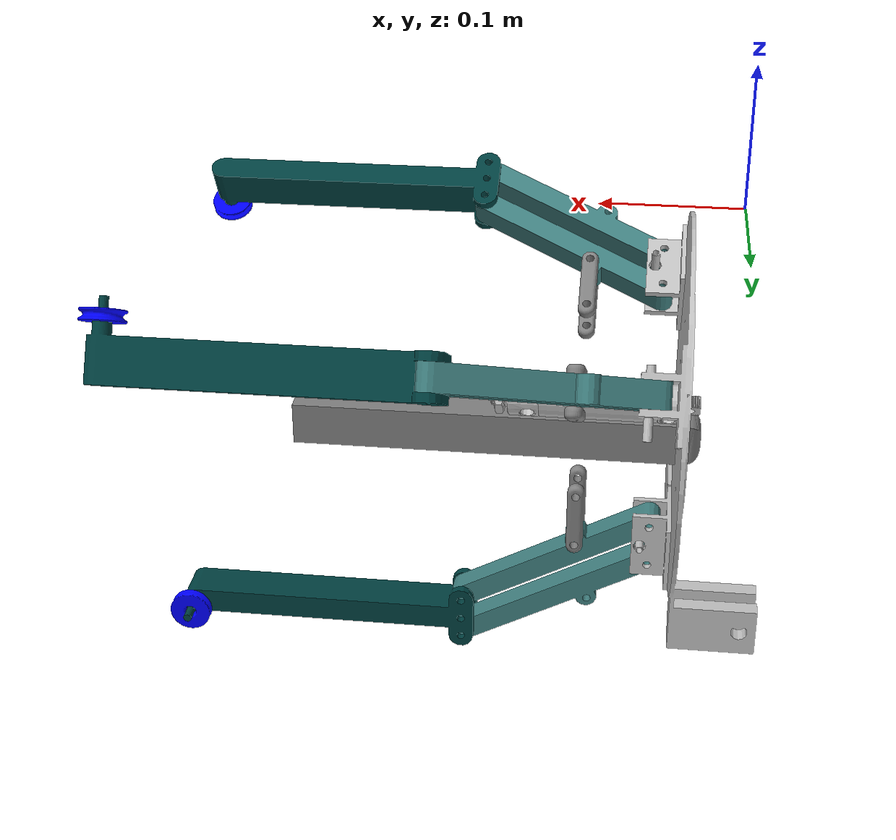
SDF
<?xml version="1.0" encoding="utf-8"?>
<sdf version="1.5">
  <model name="Grabber2">
    <pose>0 0 -0.3556 0 0 0</pose>
    <plugin name="clock" filename="libgz_clock.so">
      <topic>/gazebo/frc/time</topic>
    </plugin>
    <link name="BasePlate">
      <gravity>1</gravity>
      <self_collide>0</self_collide>
      <pose>0.0394096347676358 -0.00669160683587962 0.182263291258748 -1.5707963267949 0 -1.5707963267949</pose>
      <must_be_base_link>1</must_be_base_link>
      <velocity_decay>
        <linear>0</linear>
        <angular>0</angular>
      </velocity_decay>
      <inertial>
        <mass>0.97952268083628</mass>
        <pose>0 0 0 0 0 0</pose>
        <inertia>
          <ixx>0.00242246009405507</ixx>
          <ixy>5.07321204602836E-05</ixy>
          <ixz>3.20439790448188E-05</ixz>
          <iyy>0.00157517875275626</iyy>
          <iyz>0.000323219144293511</iyz>
          <izz>0.00320192778902699</izz>
        </inertia>
      </inertial>
      <collision name="BasePlate_collision">
        <pose>-0.00669160683587963 -0.0209367087412525 -0.00681050686065914 0 0 0</pose>
        <geometry>
          <mesh>
            <scale>1 1 1</scale>
            <uri>model://Grabber2/meshes/BasePlate_col.STL</uri>
          </mesh>
        </geometry>
        <surface>
          <contact>
            <ode />
          </contact>
          <friction>
            <ode>
              <mu>0</mu>
              <mu2>0</mu2>
            </ode>
          </friction>
        </surface>
      </collision>
      <visual name="BasePlate_visual">
        <pose>-0.00669160683587963 -0.0209367087412525 -0.00681050686065914 0 0 0</pose>
        <material>
          <ambient>0.752941176470588 0.752941176470588 0.752941176470588 1</ambient>
          <diffuse>0.752941176470588 0.752941176470588 0.752941176470588 1</diffuse>
        </material>
        <geometry>
          <mesh>
            <scale>1 1 1</scale>
            <uri>model://Grabber2/meshes/BasePlate.STL</uri>
          </mesh>
        </geometry>
      </visual>
    </link>
    <link name="Piston">
      <gravity>1</gravity>
      <self_collide>0</self_collide>
      <pose>0.142017211360412 3.57031174565772E-08 0.202177944136333 -1.5707963267949 0 -1.5707963267949</pose>
      <must_be_base_link>0</must_be_base_link>
      <velocity_decay>
        <linear>0</linear>
        <angular>0</angular>
      </velocity_decay>
      <inertial>
        <mass>0.845777994116828</mass>
        <pose>3.97046694025453E-23 0 0 0 0 0</pose>
        <inertia>
          <ixx>0.010903</ixx>
          <ixy>3.08649201397419E-11</ixy>
          <ixz>1.84330149826993E-09</ixz>
          <iyy>0.0109</iyy>
          <iyz>1.82515331666014E-06</iyz>
          <izz>3.05610714652153E-08</izz>
        </inertia>
      </inertial>
      <collision name="Piston_collision">
        <pose>3.57031174269971E-08 -0.00102205586366754 -0.109418083453435 0 0 0</pose>
        <geometry>
          <mesh>
            <scale>1 1 1</scale>
            <uri>model://Grabber2/meshes/Piston_col.STL</uri>
          </mesh>
        </geometry>
        <surface>
          <contact>
            <ode />
          </contact>
          <friction>
            <ode>
              <mu>0</mu>
              <mu2>0</mu2>
            </ode>
          </friction>
        </surface>
      </collision>
      <visual name="Piston_visual">
        <pose>3.57031174269971E-08 -0.00102205586366754 -0.109418083453435 0 0 0</pose>
        <material>
          <ambient>0.501960784313725 0.501960784313725 0.501960784313725 1</ambient>
          <diffuse>0.501960784313725 0.501960784313725 0.501960784313725 1</diffuse>
        </material>
        <geometry>
          <mesh>
            <scale>1 1 1</scale>
            <uri>model://Grabber2/meshes/Piston.STL</uri>
          </mesh>
        </geometry>
      </visual>
    </link>
    <joint name="BasePlate-Piston" type="prismatic">
      <parent>BasePlate</parent>
      <child>Piston</child>
      <pose>3.57031174269971E-08 -0.00102205586366754 -0.0281129943618401 0 4.71238898038469 0</pose>
      <axis>
        <xyz>1 0 -2.22044604925031E-16</xyz>
        <dynamics>
          <damping>1</damping>
          <friction>1</friction>
        </dynamics>
        <limit>
          <upper>0</upper>
          <lower>-0.2</lower>
          <effort>100</effort>
        </limit>
      </axis>
    </joint>
    <link name="PistonTop">
      <gravity>1</gravity>
      <self_collide>0</self_collide>
      <pose>0.107211628890243 -3.47405220951939E-15 0.109409337950045 -1.5707963267949 0 -1.5707963267949</pose>
      <must_be_base_link>0</must_be_base_link>
      <velocity_decay>
        <linear>0</linear>
        <angular>0</angular>
      </velocity_decay>
      <inertial>
        <mass>0.0393863816718466</mass>
        <pose>0 0 0 0 0 0</pose>
        <inertia>
          <ixx>0</ixx>
          <ixy>0</ixy>
          <ixz>0</ixz>
          <iyy>0</iyy>
          <iyz>0</iyz>
          <izz>0</izz>
        </inertia>
      </inertial>
      <collision name="PistonTop_collision">
        <pose>-3.49590388408064E-15 -0.0937906620499553 -0.0746125009832666 0 0 0</pose>
        <geometry>
          <mesh>
            <scale>1 1 1</scale>
            <uri>model://Grabber2/meshes/PistonTop_col.STL</uri>
          </mesh>
        </geometry>
        <surface>
          <contact>
            <ode />
          </contact>
          <friction>
            <ode>
              <mu>0</mu>
              <mu2>0</mu2>
            </ode>
          </friction>
        </surface>
      </collision>
      <visual name="PistonTop_visual">
        <pose>-3.49590388408064E-15 -0.0937906620499553 -0.0746125009832666 0 0 0</pose>
        <material>
          <ambient>0.501960784313725 0.501960784313725 0.501960784313725 1</ambient>
          <diffuse>0.501960784313725 0.501960784313725 0.501960784313725 1</diffuse>
        </material>
        <geometry>
          <mesh>
            <scale>1 1 1</scale>
            <uri>model://Grabber2/meshes/PistonTop.STL</uri>
          </mesh>
        </geometry>
      </visual>
    </link>
    <joint name="Piston-PistonTop" type="revolute">
      <parent>Piston</parent>
      <child>PistonTop</child>
      <pose>-1.81322211238313E-15 -0.0210831620499555 -0.0260017420727861 0 0 0</pose>
      <axis>
        <xyz>-1 0 0</xyz>
        <dynamics>
          <damping>1</damping>
          <friction>1</friction>
        </dynamics>
        <limit>
          <upper>0</upper>
          <lower>0</lower>
          <effort>10</effort>
        </limit>
      </axis>
    </joint>
    <joint name="TopArmIn-PistonTop" type="revolute">
      <parent>TopArmIn</parent>
      <child>PistonTop</child>
      <pose>-4.36079987370316E-19 0.0210831620499101 9.81742326322532E-10 0 0 0</pose>
      <axis>
        <xyz>-1 0 0</xyz>
        <dynamics>
          <damping>0</damping>
          <friction>0</friction>
        </dynamics>
        <limit>
          <upper>0</upper>
          <lower>0</lower>
          <effort>1</effort>
        </limit>
      </axis>
    </joint>
    <link name="PistonLeft">
      <gravity>1</gravity>
      <self_collide>0</self_collide>
      <pose>0.10721162889025 -0.0812250959730157 0.250095331024979 -1.5707963267949 0 -1.5707963267949</pose>
      <must_be_base_link>0</must_be_base_link>
      <velocity_decay>
        <linear>0</linear>
        <angular>0</angular>
      </velocity_decay>
      <inertial>
        <mass>0.0393863816718466</mass>
        <pose>0 0 0 0 0 0</pose>
        <inertia>
          <ixx>0</ixx>
          <ixy>0</ixy>
          <ixz>0</ixz>
          <iyy>0</iyy>
          <iyz>0</iyz>
          <izz>0</izz>
        </inertia>
      </inertial>
      <collision name="PistonLeft_collision">
        <pose>-0.0812250959730157 0.046895331024979 -0.0746125009832731 0 0 0</pose>
        <geometry>
          <mesh>
            <scale>1 1 1</scale>
            <uri>model://Grabber2/meshes/PistonLeft_col.STL</uri>
          </mesh>
        </geometry>
        <surface>
          <contact>
            <ode />
          </contact>
          <friction>
            <ode>
              <mu>0</mu>
              <mu2>0</mu2>
            </ode>
          </friction>
        </surface>
      </collision>
      <visual name="PistonLeft_visual">
        <pose>-0.0812250959730157 0.046895331024979 -0.0746125009832731 0 0 0</pose>
        <material>
          <ambient>0.501960784313725 0.501960784313725 0.501960784313725 1</ambient>
          <diffuse>0.501960784313725 0.501960784313725 0.501960784313725 1</diffuse>
        </material>
        <geometry>
          <mesh>
            <scale>1 1 1</scale>
            <uri>model://Grabber2/meshes/PistonLeft.STL</uri>
          </mesh>
        </geometry>
      </visual>
    </link>
    <joint name="Piston-PistonLeft" type="revolute">
      <parent>Piston</parent>
      <child>PistonLeft</child>
      <pose>-0.0182585539004344 0.0105415810094289 -0.026001742043933 0 0 0</pose>
      <axis>
        <xyz>-0.500000000000005 -0.866025403784436 5.67847744670729E-16</xyz>
        <dynamics>
          <damping>1</damping>
          <friction>1</friction>
        </dynamics>
        <limit>
          <upper>0</upper>
          <lower>0</lower>
          <effort>10</effort>
        </limit>
      </axis>
    </joint>
    <joint name="LeftArmIn-PistonLeft" type="revolute">
      <parent>LeftArmIn</parent>
      <child>PistonLeft</child>
      <pose>-0.0182585539273601 0.0105415810249748 -9.8327307407331E-10 0 0 0</pose>
      <axis>
        <xyz>-0.500000000000005 -0.866025403784436 5.67847744670729E-16</xyz>
        <dynamics>
          <damping>0</damping>
          <friction>0</friction>
        </dynamics>
        <limit>
          <upper>0</upper>
          <lower>0</lower>
          <effort>1</effort>
        </limit>
      </axis>
    </joint>
    <link name="PistonRight">
      <gravity>1</gravity>
      <self_collide>0</self_collide>
      <pose>0.107211628890242 0.0812250959730234 0.250095331024977 -1.5707963267949 0 -1.5707963267949</pose>
      <must_be_base_link>0</must_be_base_link>
      <velocity_decay>
        <linear>0</linear>
        <angular>0</angular>
      </velocity_decay>
      <inertial>
        <mass>0.0393863816718465</mass>
        <pose>0 0 0 0 0 0</pose>
        <inertia>
          <ixx>0</ixx>
          <ixy>0</ixy>
          <ixz>0</ixz>
          <iyy>0</iyy>
          <iyz>0</iyz>
          <izz>0</izz>
        </inertia>
      </inertial>
      <collision name="PistonRight_collision">
        <pose>0.0812250959730234 0.0468953310249774 -0.0746125009832657 0 0 0</pose>
        <geometry>
          <mesh>
            <scale>1 1 1</scale>
            <uri>model://Grabber2/meshes/PistonRight_col.STL</uri>
          </mesh>
        </geometry>
        <surface>
          <contact>
            <ode />
          </contact>
          <friction>
            <ode>
              <mu>0</mu>
              <mu2>0</mu2>
            </ode>
          </friction>
        </surface>
      </collision>
      <visual name="PistonRight_visual">
        <pose>0.0812250959730234 0.0468953310249774 -0.0746125009832657 0 0 0</pose>
        <material>
          <ambient>0.501960784313725 0.501960784313725 0.501960784313725 1</ambient>
          <diffuse>0.501960784313725 0.501960784313725 0.501960784313725 1</diffuse>
        </material>
        <geometry>
          <mesh>
            <scale>1 1 1</scale>
            <uri>model://Grabber2/meshes/PistonRight.STL</uri>
          </mesh>
        </geometry>
      </visual>
    </link>
    <joint name="Piston-PistonRight" type="revolute">
      <parent>Piston</parent>
      <child>PistonRight</child>
      <pose>0.0182585539273665 0.0105415810249781 -9.83265718845772E-10 0 0 1.5707963267949</pose>
      <axis>
        <xyz>0.866025403784444 0.499999999999991 0</xyz>
        <dynamics>
          <damping>1</damping>
          <friction>1</friction>
        </dynamics>
        <limit>
          <upper>0</upper>
          <lower>0</lower>
          <effort>10</effort>
        </limit>
      </axis>
    </joint>
    <joint name="RightArmIn-PistonRight" type="revolute">
      <parent>RightArmIn</parent>
      <child>PistonRight</child>
      <pose>-0.0182585539245719 -0.0105415810233646 9.82011916228487E-10 0 0 0</pose>
      <axis>
        <xyz>0.499999999999992 -0.866025403784443 -1.45698559662089E-15</xyz>
        <dynamics>
          <damping>0</damping>
          <friction>0</friction>
        </dynamics>
        <limit>
          <upper>0</upper>
          <lower>0</lower>
          <effort>1</effort>
        </limit>
      </axis>
    </joint>
    <link name="TopArmOut">
      <gravity>1</gravity>
      <self_collide>0</self_collide>
      <pose>0.121621223933921 -1.34627185846477E-15 0.0339942303824916 -1.5707963267949 0 -1.5707963267949</pose>
      <must_be_base_link>0</must_be_base_link>
      <velocity_decay>
        <linear>0</linear>
        <angular>0</angular>
      </velocity_decay>
      <inertial>
        <mass>0.150129793907084</mass>
        <pose>0 0 0 0 0 0</pose>
        <inertia>
          <ixx>0</ixx>
          <ixy>0</ixy>
          <ixz>0</ixz>
          <iyy>0</iyy>
          <iyz>0</iyz>
          <izz>0</izz>
        </inertia>
      </inertial>
      <collision name="TopArmOut_collision">
        <pose>-1.37132310586462E-15 -0.169205769617508 -0.089022096026944 0 0 0</pose>
        <geometry>
          <mesh>
            <scale>1 1 1</scale>
            <uri>model://Grabber2/meshes/TopArmOut_col.STL</uri>
          </mesh>
        </geometry>
        <surface>
          <contact>
            <ode />
          </contact>
          <friction>
            <ode>
              <mu>0</mu>
              <mu2>0</mu2>
            </ode>
          </friction>
        </surface>
      </collision>
      <visual name="TopArmOut_visual">
        <pose>-1.37132310586462E-15 -0.169205769617508 -0.089022096026944 0 0 0</pose>
        <material>
          <ambient>0.250980392156863 0.501960784313725 0.501960784313725 1</ambient>
          <diffuse>0.250980392156863 0.501960784313725 0.501960784313725 1</diffuse>
        </material>
        <geometry>
          <mesh>
            <scale>1 1 1</scale>
            <uri>model://Grabber2/meshes/TopArmOut.STL</uri>
          </mesh>
        </geometry>
      </visual>
    </link>
    <joint name="BasePlate-TopArmOut" type="revolute">
      <parent>BasePlate</parent>
      <child>TopArmOut</child>
      <pose>2.65150063492559E-15 -0.0549057696175084 -0.063622096026944 0 0 0</pose>
      <axis>
        <xyz>-1 0 0</xyz>
        <dynamics>
          <damping>1</damping>
          <friction>1</friction>
        </dynamics>
        <limit>
          <upper>0</upper>
          <lower>0</lower>
          <effort>20</effort>
        </limit>
      </axis>
    </joint>
    <link name="RightArmOut">
      <gravity>1</gravity>
      <self_collide>0</self_collide>
      <pose>0.121621223934715 0.146536494948683 0.287802884812847 -1.5707963267949 0 -1.5707963267949</pose>
      <must_be_base_link>0</must_be_base_link>
      <velocity_decay>
        <linear>0</linear>
        <angular>0</angular>
      </velocity_decay>
      <inertial>
        <mass>0.150129793907084</mass>
        <pose>0 0 0 0 0 0</pose>
        <inertia>
          <ixx>0</ixx>
          <ixy>0</ixy>
          <ixz>0</ixz>
          <iyy>0</iyy>
          <iyz>0</iyz>
          <izz>0</izz>
        </inertia>
      </inertial>
      <collision name="RightArmOut_collision">
        <pose>0.146536494948683 0.0846028848128467 -0.0890220960277382 0 0 0</pose>
        <geometry>
          <mesh>
            <scale>1 1 1</scale>
            <uri>model://Grabber2/meshes/RightArmOut_col.STL</uri>
          </mesh>
        </geometry>
        <surface>
          <contact>
            <ode />
          </contact>
          <friction>
            <ode>
              <mu>0</mu>
              <mu2>0</mu2>
            </ode>
          </friction>
        </surface>
      </collision>
      <visual name="RightArmOut_visual">
        <pose>0.146536494948683 0.0846028848128467 -0.0890220960277382 0 0 0</pose>
        <material>
          <ambient>0.250980392156863 0.501960784313725 0.501960784313725 1</ambient>
          <diffuse>0.250980392156863 0.501960784313725 0.501960784313725 1</diffuse>
        </material>
        <geometry>
          <mesh>
            <scale>1 1 1</scale>
            <uri>model://Grabber2/meshes/RightArmOut.STL</uri>
          </mesh>
        </geometry>
      </visual>
    </link>
    <joint name="BasePlate-RightArmOut" type="revolute">
      <parent>BasePlate</parent>
      <child>RightArmOut</child>
      <pose>0.0475497913126599 0.0274528847842007 -0.0636220960277382 0 0 0</pose>
      <axis>
        <xyz>0.500000000000006 -0.866025403784435 0</xyz>
        <dynamics>
          <damping>1</damping>
          <friction>1</friction>
        </dynamics>
        <limit>
          <upper>0</upper>
          <lower>0</lower>
          <effort>20</effort>
        </limit>
      </axis>
    </joint>
    <link name="LeftArmOut">
      <gravity>1</gravity>
      <self_collide>0</self_collide>
      <pose>0.121621223934282 -0.146536494947105 0.287802884813463 -1.5707963267949 0 -1.5707963267949</pose>
      <must_be_base_link>0</must_be_base_link>
      <velocity_decay>
        <linear>0</linear>
        <angular>0</angular>
      </velocity_decay>
      <inertial>
        <mass>0.150129793907084</mass>
        <pose>0 0 0 0 0 0</pose>
        <inertia>
          <ixx>0</ixx>
          <ixy>0</ixy>
          <ixz>0</ixz>
          <iyy>0</iyy>
          <iyz>0</iyz>
          <izz>0</izz>
        </inertia>
      </inertial>
      <collision name="LeftArmOut_collision">
        <pose>-0.146536494947105 0.0846028848134631 -0.0890220960273056 0 0 0</pose>
        <geometry>
          <mesh>
            <scale>1 1 1</scale>
            <uri>model://Grabber2/meshes/LeftArmOut_col.STL</uri>
          </mesh>
        </geometry>
        <surface>
          <contact>
            <ode />
          </contact>
          <friction>
            <ode>
              <mu>0</mu>
              <mu2>0</mu2>
            </ode>
          </friction>
        </surface>
      </collision>
      <visual name="LeftArmOut_visual">
        <pose>-0.146536494947105 0.0846028848134631 -0.0890220960273056 0 0 0</pose>
        <material>
          <ambient>0.250980392156863 0.501960784313725 0.501960784313725 1</ambient>
          <diffuse>0.250980392156863 0.501960784313725 0.501960784313725 1</diffuse>
        </material>
        <geometry>
          <mesh>
            <scale>1 1 1</scale>
            <uri>model://Grabber2/meshes/LeftArmOut.STL</uri>
          </mesh>
        </geometry>
      </visual>
    </link>
    <joint name="BasePlate-LeftArmOut" type="revolute">
      <parent>BasePlate</parent>
      <child>LeftArmOut</child>
      <pose>-0.0475497912970014 0.0274528848092056 -0.0636220960273056 0 0 0</pose>
      <axis>
        <xyz>0.500000000000005 0.866025403784436 0</xyz>
        <dynamics>
          <damping>1</damping>
          <friction>1</friction>
        </dynamics>
        <limit>
          <upper>0</upper>
          <lower>0</lower>
          <effort>20</effort>
        </limit>
      </axis>
    </joint>
    <link name="TopGrabber">
      <gravity>1</gravity>
      <self_collide>0</self_collide>
      <pose>0.30341463352278 0.000550207789379827 0.012109690419262 -1.5707963267949 0 -1.5707963267949</pose>
      <must_be_base_link>0</must_be_base_link>
      <velocity_decay>
        <linear>0</linear>
        <angular>0</angular>
      </velocity_decay>
      <inertial>
        <mass>0.385881200549357</mass>
        <pose>2.16840434497101E-19 -1.11022302462516E-16 -2.77555756156289E-16 0 0 0</pose>
        <inertia>
          <ixx>0.017891</ixx>
          <ixy>0</ixy>
          <ixz>2.183E-05</ixz>
          <iyy>0.018162</iyy>
          <iyz>0</iyz>
          <izz>2.70782290447359E-06</izz>
        </inertia>
      </inertial>
      <collision name="TopGrabber_collision">
        <pose>0.000550207789379761 -0.191090309580738 -0.270815505615803 0 0 0</pose>
        <geometry>
          <mesh>
            <scale>1 1 1</scale>
            <uri>model://Grabber2/meshes/TopGrabber_col.STL</uri>
          </mesh>
        </geometry>
        <surface>
          <contact>
            <ode />
          </contact>
          <friction>
            <ode>
              <mu>0</mu>
              <mu2>0</mu2>
            </ode>
          </friction>
        </surface>
      </collision>
      <visual name="TopGrabber_visual">
        <pose>0.000550207789379761 -0.191090309580738 -0.270815505615803 0 0 0</pose>
        <material>
          <ambient>0 0.250980392156863 0.250980392156863 1</ambient>
          <diffuse>0 0.250980392156863 0.250980392156863 1</diffuse>
        </material>
        <geometry>
          <mesh>
            <scale>1 1 1</scale>
            <uri>model://Grabber2/meshes/TopGrabber.STL</uri>
          </mesh>
        </geometry>
      </visual>
    </link>
    <joint name="TopArmOut-TopGrabber" type="revolute">
      <parent>TopArmOut</parent>
      <child>TopGrabber</child>
      <pose>5.33427468862868E-17 -0.0282926325268754 -0.0979395019643227 0 0 0</pose>
      <axis>
        <xyz>-1 0 0</xyz>
        <dynamics>
          <damping>1</damping>
          <friction>1</friction>
        </dynamics>
        <limit>
          <upper>0</upper>
          <lower>0</lower>
          <effort>10</effort>
        </limit>
      </axis>
    </joint>
    <joint name="TopArmIn-TopGrabber" type="revolute">
      <parent>TopArmIn</parent>
      <child>TopGrabber</child>
      <pose>-4.33680868994202E-19 -0.0165100000004933 -0.109928583574504 0 0 0</pose>
      <axis>
        <xyz>1 0 0</xyz>
        <dynamics>
          <damping>0</damping>
          <friction>0</friction>
        </dynamics>
        <limit>
          <upper>0</upper>
          <lower>0</lower>
          <effort>1</effort>
        </limit>
      </axis>
    </joint>
    <link name="RightGrabber">
      <gravity>1</gravity>
      <self_collide>0</self_collide>
      <pose>0.303414635474732 0.165213955768811 0.299221652314552 -1.5707963267949 0 -1.5707963267949</pose>
      <must_be_base_link>0</must_be_base_link>
      <velocity_decay>
        <linear>0</linear>
        <angular>0</angular>
      </velocity_decay>
      <inertial>
        <mass>0.385881200549356</mass>
        <pose>3.05311331771918E-16 -4.16333634234434E-17 2.77555756156289E-16 0 0 0</pose>
        <inertia>
          <ixx>0.018095</ixx>
          <ixy>1.17E-06</ixy>
          <ixz>1.091E-05</ixz>
          <iyy>0.017959</iyy>
          <iyz>1.89E-05</iyz>
          <izz>2.71E-06</izz>
        </inertia>
      </inertial>
      <collision name="RightGrabber_collision">
        <pose>0.165213955768811 0.0960216523145518 -0.270815507567756 0 0 0</pose>
        <geometry>
          <mesh>
            <scale>1 1 1</scale>
            <uri>model://Grabber2/meshes/RightGrabber_col.STL</uri>
          </mesh>
        </geometry>
        <surface>
          <contact>
            <ode />
          </contact>
          <friction>
            <ode>
              <mu>0</mu>
              <mu2>0</mu2>
            </ode>
          </friction>
        </surface>
      </collision>
      <visual name="RightGrabber_visual">
        <pose>0.165213955768811 0.0960216523145518 -0.270815507567756 0 0 0</pose>
        <material>
          <ambient>0 0.250980392156863 0.250980392156863 1</ambient>
          <diffuse>0 0.250980392156863 0.250980392156863 1</diffuse>
        </material>
        <geometry>
          <mesh>
            <scale>1 1 1</scale>
            <uri>model://Grabber2/meshes/RightGrabber.STL</uri>
          </mesh>
        </geometry>
      </visual>
    </link>
    <joint name="RightArmOut-RightGrabber" type="revolute">
      <parent>RightArmOut</parent>
      <child>RightGrabber</child>
      <pose>-0.0142980799909579 -0.00825500033167442 -0.109928585526126 0 0 4.71238898038469</pose>
      <axis>
        <xyz>0.866025403784443 0.499999999999992 0</xyz>
        <dynamics>
          <damping>1</damping>
          <friction>1</friction>
        </dynamics>
        <limit>
          <upper>0</upper>
          <lower>0</lower>
          <effort>10</effort>
        </limit>
      </axis>
    </joint>
    <joint name="RightArmIn-RightGrabber" type="revolute">
      <parent>RightArmIn</parent>
      <child>RightGrabber</child>
      <pose>0.0142980788411829 0.00825499966785105 -0.109928585526199 0 0 0</pose>
      <axis>
        <xyz>-0.499999999999992 0.866025403784443 0</xyz>
        <dynamics>
          <damping>0</damping>
          <friction>0</friction>
        </dynamics>
        <limit>
          <upper>0</upper>
          <lower>0</lower>
          <effort>1</effort>
        </limit>
      </axis>
    </joint>
    <link name="LeftGrabber">
      <gravity>1</gravity>
      <self_collide>0</self_collide>
      <pose>0.303414633549958 -0.165764166655437 0.298268660755848 -1.5707963267949 0 -1.5707963267949</pose>
      <must_be_base_link>0</must_be_base_link>
      <velocity_decay>
        <linear>0</linear>
        <angular>0</angular>
      </velocity_decay>
      <inertial>
        <mass>0.385881200549356</mass>
        <pose>2.77555756156289E-16 -1.38777878078145E-17 -4.44089209850063E-16 0 0 0</pose>
        <inertia>
          <ixx>0.018095</ixx>
          <ixy>1.17E-06</ixy>
          <ixz>1.091E-05</ixz>
          <iyy>0.017959</iyy>
          <iyz>1.89E-05</iyz>
          <izz>2.71E-06</izz>
        </inertia>
      </inertial>
      <collision name="LeftGrabber_collision">
        <pose>-0.165764166655437 0.0950686607558478 -0.270815505642981 0 0 0</pose>
        <geometry>
          <mesh>
            <scale>1 1 1</scale>
            <uri>model://Grabber2/meshes/LeftGrabber_col.STL</uri>
          </mesh>
        </geometry>
        <surface>
          <contact>
            <ode />
          </contact>
          <friction>
            <ode>
              <mu>0</mu>
              <mu2>0</mu2>
            </ode>
          </friction>
        </surface>
      </collision>
      <visual name="LeftGrabber_visual">
        <pose>-0.165764166655437 0.0950686607558478 -0.270815505642981 0 0 0</pose>
        <material>
          <ambient>0 0.250980392156863 0.250980392156863 1</ambient>
          <diffuse>0 0.250980392156863 0.250980392156863 1</diffuse>
        </material>
        <geometry>
          <mesh>
            <scale>1 1 1</scale>
            <uri>model://Grabber2/meshes/LeftGrabber.STL</uri>
          </mesh>
        </geometry>
      </visual>
    </link>
    <joint name="LeftArmOut-LeftGrabber" type="revolute">
      <parent>LeftArmOut</parent>
      <child>LeftGrabber</child>
      <pose>-0.0245021378743783 0.014146317117915 -0.0979395024492961 0 0 0</pose>
      <axis>
        <xyz>0.500000000000003 0.866025403784437 1.05313796828123E-15</xyz>
        <dynamics>
          <damping>1</damping>
          <friction>1</friction>
        </dynamics>
        <limit>
          <upper>0</upper>
          <lower>0</lower>
          <effort>10</effort>
        </limit>
      </axis>
    </joint>
    <joint name="LeftArmIn-LeftGrabber" type="revolute">
      <parent>LeftArmIn</parent>
      <child>LeftGrabber</child>
      <pose>-0.0142980795568851 0.00825500008106252 -0.109928583601641 0 0 0</pose>
      <axis>
        <xyz>-0.500000000000004 -0.866025403784436 0</xyz>
        <dynamics>
          <damping>0</damping>
          <friction>0</friction>
        </dynamics>
        <limit>
          <upper>0</upper>
          <lower>0</lower>
          <effort>1</effort>
        </limit>
      </axis>
    </joint>
    <link name="TopWheel">
      <gravity>1</gravity>
      <self_collide>0</self_collide>
      <pose>0.40621104995321 0.0286687406039986 0.0121096904154314 -1.5707963267949 0 -1.5707963267949</pose>
      <must_be_base_link>0</must_be_base_link>
      <velocity_decay>
        <linear>0</linear>
        <angular>0</angular>
      </velocity_decay>
      <inertial>
        <mass>0.00457804253609279</mass>
        <pose>0 0 0 0 0 0</pose>
        <inertia>
          <ixx>0</ixx>
          <ixy>0</ixy>
          <ixz>0</ixz>
          <iyy>0</iyy>
          <iyz>0</iyz>
          <izz>0</izz>
        </inertia>
      </inertial>
      <collision name="TopWheel_collision">
        <pose>0.0286687406039985 -0.191090309584569 -0.373611922046233 0 0 0</pose>
        <geometry>
          <mesh>
            <scale>1 1 1</scale>
            <uri>model://Grabber2/meshes/TopWheel_col.STL</uri>
          </mesh>
        </geometry>
        <surface>
          <contact>
            <ode />
          </contact>
          <friction>
            <ode>
              <mu>0</mu>
              <mu2>0</mu2>
            </ode>
          </friction>
        </surface>
      </collision>
      <visual name="TopWheel_visual">
        <pose>0.0286687406039985 -0.191090309584569 -0.373611922046233 0 0 0</pose>
        <material>
          <ambient>0 0 1 1</ambient>
          <diffuse>0 0 1 1</diffuse>
        </material>
        <geometry>
          <mesh>
            <scale>1 1 1</scale>
            <uri>model://Grabber2/meshes/TopWheel.STL</uri>
          </mesh>
        </geometry>
      </visual>
    </link>
    <joint name="TopGrabber-TopWheel" type="revolute">
      <parent>TopGrabber</parent>
      <child>TopWheel</child>
      <pose>1.38777878078145E-17 -0.0282926325310154 0.0119890816045823 0 0 0</pose>
      <axis>
        <xyz>1 0 0</xyz>
        <dynamics>
          <damping>0</damping>
          <friction>0</friction>
        </dynamics>
        <limit>
          <effort>1</effort>
        </limit>
      </axis>
    </joint>
    <link name="RightWheel">
      <gravity>1</gravity>
      <self_collide>0</self_collide>
      <pose>0.40621105630917 0.151154688778214 0.323573020789361 -1.5707963267949 0 -1.5707963267949</pose>
      <must_be_base_link>0</must_be_base_link>
      <velocity_decay>
        <linear>0</linear>
        <angular>0</angular>
      </velocity_decay>
      <inertial>
        <mass>0.0045780425360928</mass>
        <pose>0 0 0 0 0 0</pose>
        <inertia>
          <ixx>0</ixx>
          <ixy>0</ixy>
          <ixz>0</ixz>
          <iyy>0</iyy>
          <iyz>0</iyz>
          <izz>0</izz>
        </inertia>
      </inertial>
      <collision name="RightWheel_collision">
        <pose>0.151154688778214 0.120373020789361 -0.373611928402193 0 0 0</pose>
        <geometry>
          <mesh>
            <scale>1 1 1</scale>
            <uri>model://Grabber2/meshes/RightWheel_col.STL</uri>
          </mesh>
        </geometry>
        <surface>
          <contact>
            <ode />
          </contact>
          <friction>
            <ode>
              <mu>0</mu>
              <mu2>0</mu2>
            </ode>
          </friction>
        </surface>
      </collision>
      <visual name="RightWheel_visual">
        <pose>0.151154688778214 0.120373020789361 -0.373611928402193 0 0 0</pose>
        <material>
          <ambient>0 0 1 1</ambient>
          <diffuse>0 0 1 1</diffuse>
        </material>
        <geometry>
          <mesh>
            <scale>1 1 1</scale>
            <uri>model://Grabber2/meshes/RightWheel.STL</uri>
          </mesh>
        </geometry>
      </visual>
    </link>
    <joint name="RightGrabber-RightWheel" type="revolute">
      <parent>RightGrabber</parent>
      <child>RightWheel</child>
      <pose>5.17983156367308E-10 2.99057736907749E-10 -4.13219514161511E-10 0 1.78723566518379E-13 1.5707963267951</pose>
      <axis>
        <xyz>0.866025403784881 0.499999999999234 -2.39444176584258E-14</xyz>
        <dynamics>
          <damping>0</damping>
          <friction>0</friction>
        </dynamics>
        <limit>
          <effort>1</effort>
        </limit>
      </axis>
    </joint>
    <link name="LeftWheel">
      <gravity>1</gravity>
      <self_collide>0</self_collide>
      <pose>0.406211049792121 -0.179823433157647 0.273917296777634 -1.5707963267949 0 -1.5707963267949</pose>
      <must_be_base_link>0</must_be_base_link>
      <velocity_decay>
        <linear>0</linear>
        <angular>0</angular>
      </velocity_decay>
      <inertial>
        <mass>0.00457804253609279</mass>
        <pose>0 0 0 0 0 0</pose>
        <inertia>
          <ixx>0</ixx>
          <ixy>0</ixy>
          <ixz>0</ixz>
          <iyy>0</iyy>
          <iyz>0</iyz>
          <izz>0</izz>
        </inertia>
      </inertial>
      <collision name="LeftWheel_collision">
        <pose>-0.179823433157647 0.0707172967776338 -0.373611921885144 0 0 0</pose>
        <geometry>
          <mesh>
            <scale>1 1 1</scale>
            <uri>model://Grabber2/meshes/LeftWheel_col.STL</uri>
          </mesh>
        </geometry>
        <surface>
          <contact>
            <ode />
          </contact>
          <friction>
            <ode>
              <mu>0</mu>
              <mu2>0</mu2>
            </ode>
          </friction>
        </surface>
      </collision>
      <visual name="LeftWheel_visual">
        <pose>-0.179823433157647 0.0707172967776338 -0.373611921885144 0 0 0</pose>
        <material>
          <ambient>0 0 1 1</ambient>
          <diffuse>0 0 1 1</diffuse>
        </material>
        <geometry>
          <mesh>
            <scale>1 1 1</scale>
            <uri>model://Grabber2/meshes/LeftWheel.STL</uri>
          </mesh>
        </geometry>
      </visual>
    </link>
    <joint name="LeftGrabber-LeftWheel" type="revolute">
      <parent>LeftGrabber</parent>
      <child>LeftWheel</child>
      <pose>-0.0245021382845133 0.0141463169867673 0.0119890810168022 0 0 0</pose>
      <axis>
        <xyz>-0.500000000000005 -0.866025403784436 -8.86062342427415E-15</xyz>
        <dynamics>
          <damping>0</damping>
          <friction>0</friction>
        </dynamics>
        <limit>
          <effort>1</effort>
        </limit>
      </axis>
    </joint>
    <link name="TopArmIn">
      <gravity>1</gravity>
      <self_collide>0</self_collide>
      <pose>0.122050767731529 -3.48368510905875E-15 0.0678076269763273 -1.5707963267949 0 -1.5707963267949</pose>
      <must_be_base_link>0</must_be_base_link>
      <velocity_decay>
        <linear>0</linear>
        <angular>0</angular>
      </velocity_decay>
      <inertial>
        <mass>0.150129793907084</mass>
        <pose>0 0 0 0 0 0</pose>
        <inertia>
          <ixx>0</ixx>
          <ixy>0</ixy>
          <ixz>0</ixz>
          <iyy>0</iyy>
          <iyz>0</iyz>
          <izz>0</izz>
        </inertia>
      </inertial>
      <collision name="TopArmIn_collision">
        <pose>-3.50883173434144E-15 -0.135392373023673 -0.0894516398245526 0 0 0</pose>
        <geometry>
          <mesh>
            <scale>1 1 1</scale>
            <uri>model://Grabber2/meshes/TopArmIn_col.STL</uri>
          </mesh>
        </geometry>
        <surface>
          <contact>
            <ode />
          </contact>
          <friction>
            <ode>
              <mu>0</mu>
              <mu2>0</mu2>
            </ode>
          </friction>
        </surface>
      </collision>
      <visual name="TopArmIn_visual">
        <pose>-3.50883173434144E-15 -0.135392373023673 -0.0894516398245526 0 0 0</pose>
        <material>
          <ambient>0.250980392156863 0.501960784313725 0.501960784313725 1</ambient>
          <diffuse>0.250980392156863 0.501960784313725 0.501960784313725 1</diffuse>
        </material>
        <geometry>
          <mesh>
            <scale>1 1 1</scale>
            <uri>model://Grabber2/meshes/TopArmIn.STL</uri>
          </mesh>
        </geometry>
      </visual>
    </link>
    <joint name="BasePlate-TopArmIn" type="revolute">
      <parent>BasePlate</parent>
      <child>TopArmIn</child>
      <pose>5.13857559636482E-19 -0.0376023730236728 -0.0704016398245526 0 0 0</pose>
      <axis>
        <xyz>-1 0 0</xyz>
        <dynamics>
          <damping>0</damping>
          <friction>0</friction>
        </dynamics>
        <limit>
          <upper>0</upper>
          <lower>0</lower>
          <effort>1</effort>
        </limit>
      </axis>
    </joint>
    <link name="LeftArmIn">
      <gravity>1</gravity>
      <self_collide>0</self_collide>
      <pose>0.122050767731578 -0.117253234511133 0.270896186514885 -1.5707963267949 0 -1.5707963267949</pose>
      <must_be_base_link>0</must_be_base_link>
      <velocity_decay>
        <linear>0</linear>
        <angular>0</angular>
      </velocity_decay>
      <inertial>
        <mass>0.150129793907084</mass>
        <pose>0 0 0 0 0 0</pose>
        <inertia>
          <ixx>0</ixx>
          <ixy>0</ixy>
          <ixz>0</ixz>
          <iyy>0</iyy>
          <iyz>0</iyz>
          <izz>0</izz>
        </inertia>
      </inertial>
      <collision name="LeftArmIn_collision">
        <pose>-0.117253234511133 0.0676961865148847 -0.0894516398246011 0 0 0</pose>
        <geometry>
          <mesh>
            <scale>1 1 1</scale>
            <uri>model://Grabber2/meshes/LeftArmIn_col.STL</uri>
          </mesh>
        </geometry>
        <surface>
          <contact>
            <ode />
          </contact>
          <friction>
            <ode>
              <mu>0</mu>
              <mu2>0</mu2>
            </ode>
          </friction>
        </surface>
      </collision>
      <visual name="LeftArmIn_visual">
        <pose>-0.117253234511133 0.0676961865148847 -0.0894516398246011 0 0 0</pose>
        <material>
          <ambient>0.250980392156863 0.501960784313725 0.501960784313725 1</ambient>
          <diffuse>0.250980392156863 0.501960784313725 0.501960784313725 1</diffuse>
        </material>
        <geometry>
          <mesh>
            <scale>1 1 1</scale>
            <uri>model://Grabber2/meshes/LeftArmIn.STL</uri>
          </mesh>
        </geometry>
      </visual>
    </link>
    <joint name="BasePlate-LeftArmIn" type="revolute">
      <parent>BasePlate</parent>
      <child>LeftArmIn</child>
      <pose>-0.0325646102778794 0.0188011865099892 -0.070401639824601 0 0 1.5707963267949</pose>
      <axis>
        <xyz>0.866025403784436 -0.500000000000004 0</xyz>
        <dynamics>
          <damping>0</damping>
          <friction>0</friction>
        </dynamics>
        <limit>
          <upper>0</upper>
          <lower>0</lower>
          <effort>1</effort>
        </limit>
      </axis>
    </joint>
    <link name="RightArmIn">
      <gravity>1</gravity>
      <self_collide>0</self_collide>
      <pose>0.122050767731794 0.117253234511941 0.270896186514521 -1.5707963267949 0 -1.5707963267949</pose>
      <must_be_base_link>0</must_be_base_link>
      <velocity_decay>
        <linear>0</linear>
        <angular>0</angular>
      </velocity_decay>
      <inertial>
        <mass>0.150129793907084</mass>
        <pose>0 0 0 0 0 0</pose>
        <inertia>
          <ixx>0</ixx>
          <ixy>0</ixy>
          <ixz>0</ixz>
          <iyy>0</iyy>
          <iyz>0</iyz>
          <izz>0</izz>
        </inertia>
      </inertial>
      <collision name="RightArmIn_collision">
        <pose>0.117253234511941 0.067696186514521 -0.0894516398248171 0 0 0</pose>
        <geometry>
          <mesh>
            <scale>1 1 1</scale>
            <uri>model://Grabber2/meshes/RightArmIn_col.STL</uri>
          </mesh>
        </geometry>
        <surface>
          <contact>
            <ode />
          </contact>
          <friction>
            <ode>
              <mu>0</mu>
              <mu2>0</mu2>
            </ode>
          </friction>
        </surface>
      </collision>
      <visual name="RightArmIn_visual">
        <pose>0.117253234511941 0.067696186514521 -0.0894516398248171 0 0 0</pose>
        <material>
          <ambient>0.250980392156863 0.501960784313725 0.501960784313725 1</ambient>
          <diffuse>0.250980392156863 0.501960784313725 0.501960784313725 1</diffuse>
        </material>
        <geometry>
          <mesh>
            <scale>1 1 1</scale>
            <uri>model://Grabber2/meshes/RightArmIn.STL</uri>
          </mesh>
        </geometry>
      </visual>
    </link>
    <joint name="BasePlate-RightArmIn" type="revolute">
      <parent>BasePlate</parent>
      <child>RightArmIn</child>
      <pose>0.0325646102783278 0.018801186510248 -0.0704016398248171 0 0 0</pose>
      <axis>
        <xyz>0.500000000000003 -0.866025403784437 0</xyz>
        <dynamics>
          <damping>0</damping>
          <friction>0</friction>
        </dynamics>
        <limit>
          <upper>0</upper>
          <lower>0</lower>
          <effort>1</effort>
        </limit>
      </axis>
    </joint>
  </model>
</sdf>
